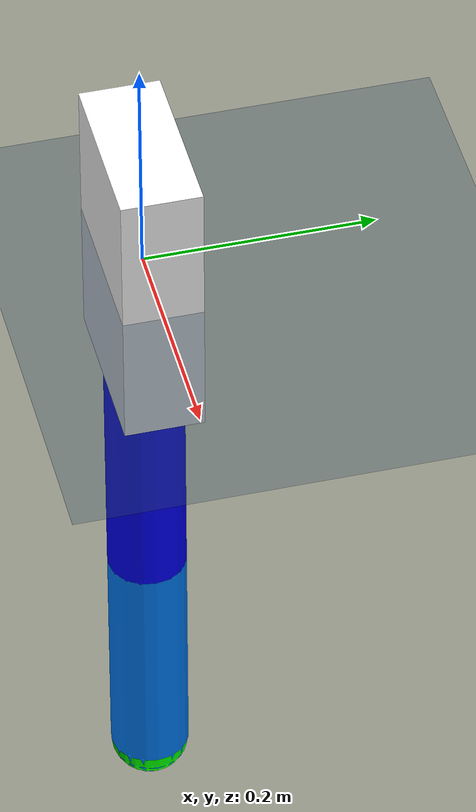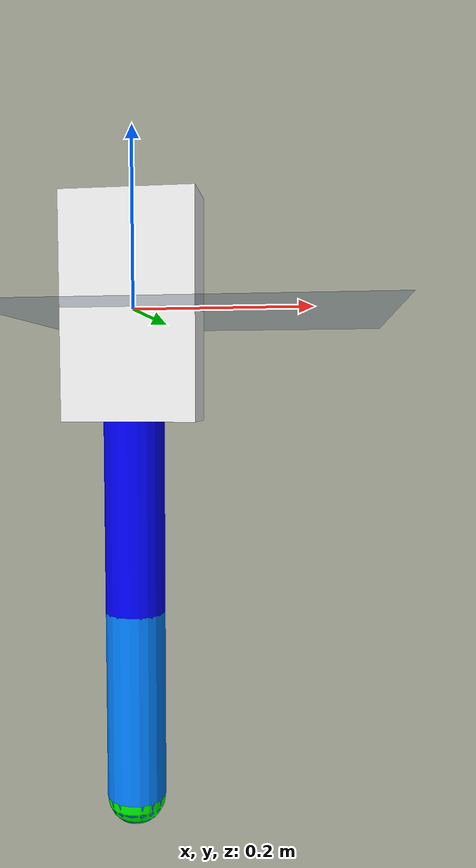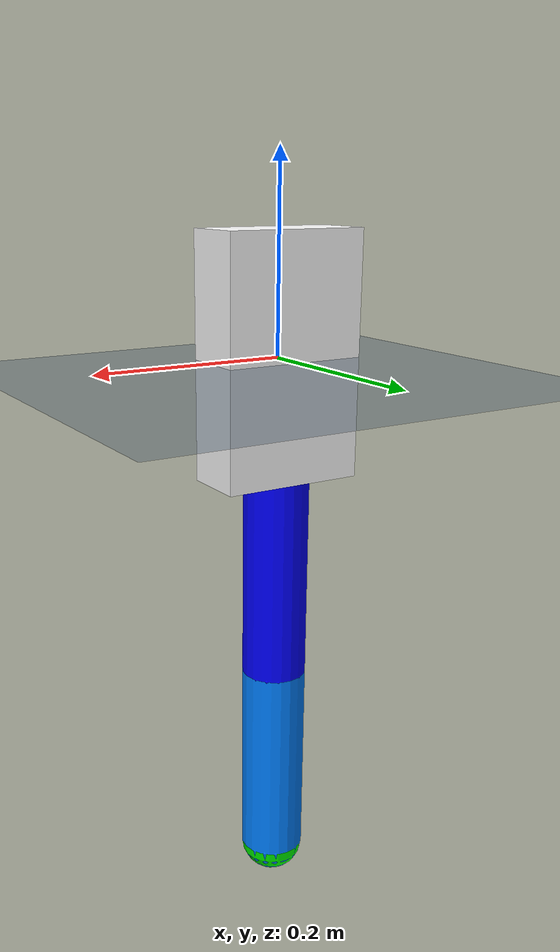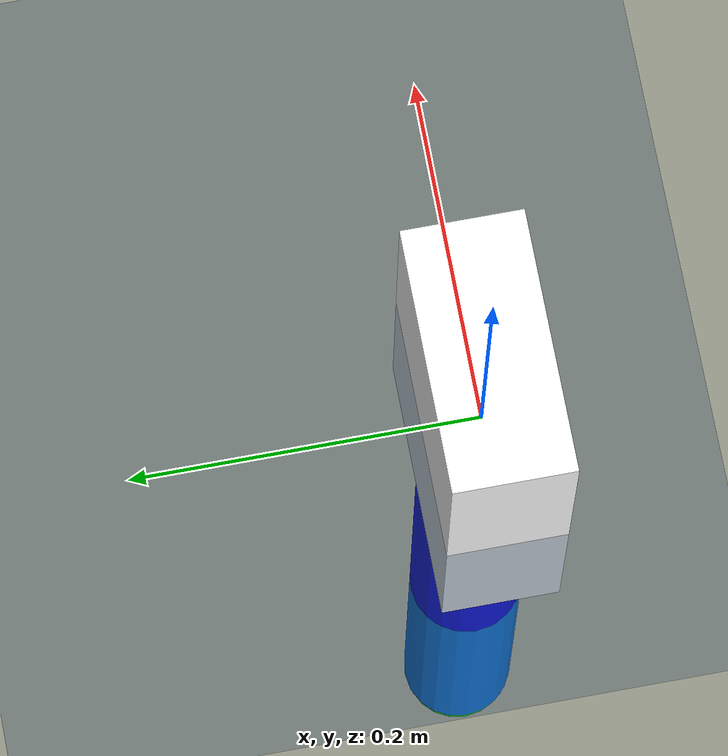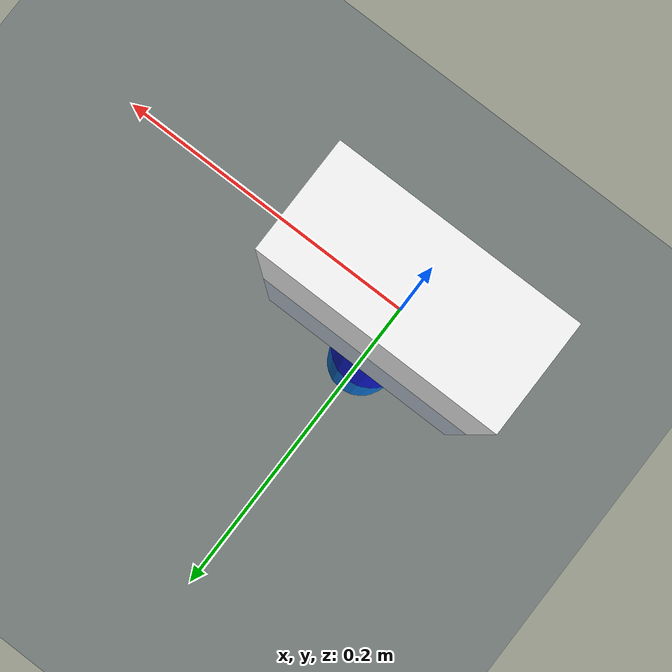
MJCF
<mujoco model="biped">
    <compiler angle="radian"/>
    <option gravity="0 0 -9.81" integrator="RK4" timestep="0.001" o_solref="-1e5 -1e3" o_friction="0.5">
        <flag override="enable"/>
    </option>

    <asset>
        <texture type="skybox" builtin="gradient" rgb1="0.3 0.5 0.7" rgb2="0 0 0" width="512" height="3072" />
        <texture type="2d" name="floor" builtin="checker" mark="edge" rgb1="0.2 0.3 0.4" rgb2="0.1 0.2 0.3" markrgb="0.8 0.8 0.8" width="300" height="300" />
        <material name="floor" texture="floor" texuniform="true" texrepeat="5 5" reflectance="0.5"/>
    </asset>

    <visual>
        <headlight diffuse="0.6 0.6 0.6" ambient="0.3 0.3 0.3" specular="0 0 0" />
    </visual>

    <worldbody>

        <light name="spotlight0" mode="targetbodycom" target="torso" pos="0 0 10" cutoff="60" />
        <light name="spotlight1" mode="targetbodycom" target="torso" pos="0.5 0 10" cutoff="60" />
        <geom name="floor" type="plane" material="floor" size="10 10 0.1" pos="0 0 0" conaffinity="1" condim="4"/>

        <!-- torso -->
        <body name="torso" pos="0 0 0">
            <joint type="free"/>
            <!-- torso geometry, mass = 8 kg -->
            <geom name="torso" type="box" size="0.075 0.0345 0.125" mass="8" rgba="1 1 1 1"/>

            <body name="l_thigh" pos="0 0 -0.235">
                <joint name="l_thigh" type="hinge" pos="0 0 0.11" axis="0 1 0" limited="true" range="-2.0943951 0.523599" damping="0.1"/>
                <geom name="l_thigh" type="capsule" size="0.0345 0.11" mass="0.25" rgba="0 0 1 1"/>

                <body name="l_calf" pos="0 0 -0.22">
                    <joint name="l_calf" type="hinge" pos="0 0 0.11" axis="0 1 0" limited="true" range="0 2.7925268032" damping="0.1"/>
                    <geom name="l_calf" type="capsule" size="0.0345 0.11" mass="0.25" rgba="0 0.5 1 1"/>
                        <geom name="l_foot" type="sphere" pos="0 0 -0.11" mass="0" size="0.0345" rgba="0 1 0 1"/>
                </body>
            </body>

            <body name="r_thigh" pos="0 0 -0.235">
                <joint name="r_thigh" type="hinge" pos="0 0 0.11" axis="0 1 0" limited="true" range="-2.0943951 0.523599" damping="0.1"/>
                <geom name="r_thigh" type="capsule" size="0.0345 0.11" mass="0.25" rgba="1 0 0 1"/>

                <body name="r_calf" pos="0 0 -0.22">
                    <joint name="r_calf" type="hinge" pos="0 0 0.11" axis="0 1 0" limited="true" range="0 2.7925268032" damping="0.1"/>
                    <geom name="r_calf" type="capsule" size="0.0345 0.11" mass="0.25" rgba="1 0.3 0 1"/>
                        <geom name="r_foot" type="sphere" pos="0 0 -0.11" mass="0" size="0.0345" rgba="0 1 0 1"/>
                </body>
            </body>
        </body>
    </worldbody>

    <actuator>
        <motor name="l_thigh" joint="l_thigh"/>
        <motor name="l_calf" joint="l_calf"/>
        <motor name="r_thigh" joint="r_thigh"/>
        <motor name="r_calf" joint="r_calf"/>
    </actuator>

    <contact>
        <exclude body1="l_thigh" body2="r_thigh"/>
        <exclude body1="l_calf" body2="r_calf"/>
        <exclude body1="l_calf" body2="r_thigh"/>
        <exclude body1="l_thigh" body2="r_calf"/>
    </contact>

    <keyframe>
            <!-- qpos="0 0 0.57 1 0 0 0 -0.0471975512 0.5707963268 -0.5235987756 0.5707963268" -->
            <!-- qpos="0 0 0.55 1 0 0 0 -1.0471975512 1.5707963268 -0.5235987756 1.5707963268" -->
        <key name="init"
            qpos="0 0 0.52 1 0 0 0 -0.0471975512 0.5707963268 -0.5235987756 0.5707963268"
            qvel="0 0 0 0 0 0 0 0 0 0"
        />
  </keyframe>
</mujoco>
